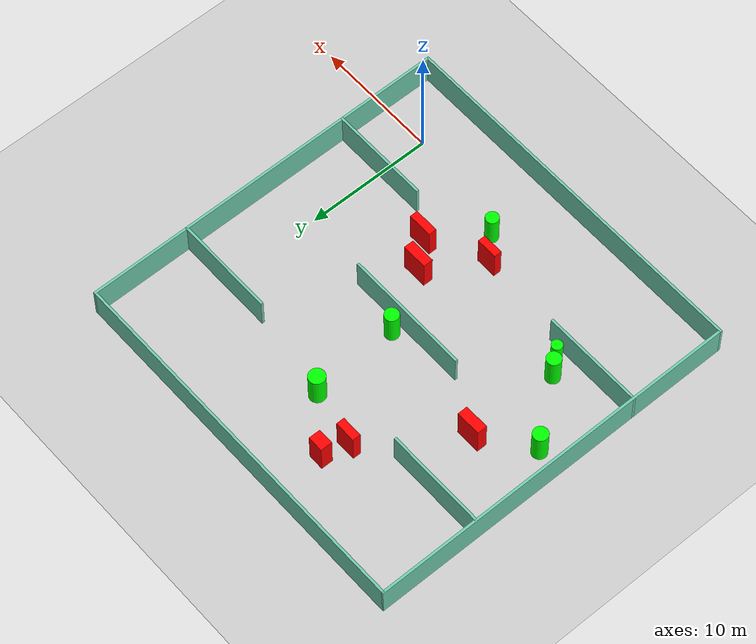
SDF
<sdf version="1.7">
 <world name="default">
  <light name="sun" type="directional">
   <pose>0 0 10 0 -0 0</pose>
   <diffuse>0.8 0.8 0.8 1</diffuse>
   <specular>0.2 0.2 0.2 1</specular>
   <attenuation>
    <range>1000</range>
    <constant>0.9</constant>
    <linear>0.01</linear>
    <quadratic>0.001</quadratic>
   </attenuation>
   <direction>-0.5 0.1 -0.9</direction>
   <spot><inner_angle>0</inner_angle><outer_angle>0</outer_angle><falloff>0</falloff></spot>
  </light>
  <model name="ground_plane">
   <static>1</static>
   <link name="link">
    <collision name="collision">
     <geometry><plane><normal>0 0 1</normal><size>100 100</size></plane></geometry>
     <surface>
      <contact><collide_bitmask>65535</collide_bitmask></contact>
      <friction><ode><mu>100</mu><mu2>50</mu2></ode></friction>
     </surface>
    </collision>
    <visual name="visual">
     <cast_shadows>0</cast_shadows>
     <geometry><plane><normal>0 0 1</normal><size>100 100</size></plane></geometry>
     <material>
      <script><uri>file://media/materials/scripts/gazebo.material</uri><name>Gazebo/Grey</name></script>
     </material>
    </visual>
   </link>
  </model>
  <gravity>0 0 -9.8</gravity>
  <magnetic_field>6e-06 2.3e-05 -4.2e-05</magnetic_field>
  <atmosphere type="adiabatic"/>
  <physics type="ode">
   <max_step_size>0.001</max_step_size>
   <real_time_factor>1</real_time_factor>
   <real_time_update_rate>1000</real_time_update_rate>
  </physics>
  <scene><ambient>0.4 0.4 0.4 1</ambient><background>0.7 0.7 0.7 1</background><shadows>1</shadows></scene>
  <spherical_coordinates>
   <surface_model>EARTH_WGS84</surface_model>
   <latitude_deg>0</latitude_deg>
   <longitude_deg>0</longitude_deg>
   <elevation>0</elevation>
   <heading_deg>0</heading_deg>
  </spherical_coordinates>
  <model name="my_base_walls">
   <link name="Wall_10">
    <collision name="Wall_10_Collision">
     <geometry><box><size>8.2 0.2 2.5</size></box></geometry>
     <pose>0 0 1.25 0 -0 0</pose>
    </collision>
    <visual name="Wall_10_Visual">
     <pose>0 0 1.25 0 -0 0</pose>
     <geometry><box><size>8.2 0.2 2.5</size></box></geometry>
     <material>
      <script><uri>file://media/materials/scripts/gazebo.material</uri><name>Gazebo/Grey</name></script>
      <ambient>0.435294 0.796078 0.67451 1</ambient>
     </material>
     <meta><layer>0</layer></meta>
    </visual>
    <pose>-11 -7 0 0 -0 0</pose>
   </link>
   <link name="Wall_12">
    <collision name="Wall_12_Collision">
     <geometry><box><size>8.2 0.2 2.5</size></box></geometry>
     <pose>0 0 1.25 0 -0 0</pose>
    </collision>
    <visual name="Wall_12_Visual">
     <pose>0 0 1.25 0 -0 0</pose>
     <geometry><box><size>8.2 0.2 2.5</size></box></geometry>
     <material>
      <script><uri>file://media/materials/scripts/gazebo.material</uri><name>Gazebo/Grey</name></script>
      <ambient>0.435294 0.796078 0.67451 1</ambient>
     </material>
     <meta><layer>0</layer></meta>
    </visual>
    <pose>-11 7 0 0 -0 0</pose>
   </link>
   <link name="Wall_14">
    <collision name="Wall_14_Collision">
     <geometry><box><size>8.2 0.2 2.5</size></box></geometry>
     <pose>0 0 1.25 0 -0 0</pose>
    </collision>
    <visual name="Wall_14_Visual">
     <pose>0 0 1.25 0 -0 0</pose>
     <geometry><box><size>8.2 0.2 2.5</size></box></geometry>
     <material>
      <script><uri>file://media/materials/scripts/gazebo.material</uri><name>Gazebo/Grey</name></script>
      <ambient>0.435294 0.796078 0.67451 1</ambient>
     </material>
     <meta><layer>0</layer></meta>
    </visual>
    <pose>11 7 0 0 -0 3.14159</pose>
   </link>
   <link name="Wall_16">
    <collision name="Wall_16_Collision">
     <geometry><box><size>10.2 0.2 2.5</size></box></geometry>
     <pose>0 0 1.25 0 -0 0</pose>
    </collision>
    <visual name="Wall_16_Visual">
     <pose>0 0 1.25 0 -0 0</pose>
     <geometry><box><size>10.2 0.2 2.5</size></box></geometry>
     <material>
      <script><uri>file://media/materials/scripts/gazebo.material</uri><name>Gazebo/Grey</name></script>
      <ambient>0.435294 0.796078 0.67451 1</ambient>
     </material>
     <meta><layer>0</layer></meta>
    </visual>
    <pose>0 0 0 0 -0 3.14159</pose>
   </link>
   <link name="Wall_2">
    <collision name="Wall_2_Collision">
     <geometry><box><size>30.2 0.2 2.5</size></box></geometry>
     <pose>0 0 1.25 0 -0 0</pose>
    </collision>
    <visual name="Wall_2_Visual">
     <pose>0 0 1.25 0 -0 0</pose>
     <geometry><box><size>30.2 0.2 2.5</size></box></geometry>
     <material>
      <script><uri>file://media/materials/scripts/gazebo.material</uri><name>Gazebo/Grey</name></script>
      <ambient>0.435294 0.796078 0.67451 1</ambient>
     </material>
     <meta><layer>0</layer></meta>
    </visual>
    <pose>0 -15 0 0 -0 3.14159</pose>
   </link>
   <link name="Wall_3">
    <collision name="Wall_3_Collision">
     <geometry><box><size>30.2 0.2 2.5</size></box></geometry>
     <pose>0 0 1.25 0 -0 0</pose>
    </collision>
    <visual name="Wall_3_Visual">
     <pose>0 0 1.25 0 -0 0</pose>
     <geometry><box><size>30.2 0.2 2.5</size></box></geometry>
     <material>
      <script><uri>file://media/materials/scripts/gazebo.material</uri><name>Gazebo/Grey</name></script>
      <ambient>0.435294 0.796078 0.67451 1</ambient>
     </material>
     <meta><layer>0</layer></meta>
    </visual>
    <pose>-15 0 0 0 -0 1.5708</pose>
   </link>
   <link name="Wall_4">
    <collision name="Wall_4_Collision">
     <geometry><box><size>30.2 0.2 2.5</size></box></geometry>
     <pose>0 0 1.25 0 -0 0</pose>
    </collision>
    <visual name="Wall_4_Visual">
     <pose>0 0 1.25 0 -0 0</pose>
     <geometry><box><size>30.2 0.2 2.5</size></box></geometry>
     <material>
      <script><uri>file://media/materials/scripts/gazebo.material</uri><name>Gazebo/Grey</name></script>
      <ambient>0.435294 0.796078 0.67451 1</ambient>
     </material>
     <meta><layer>0</layer></meta>
    </visual>
    <pose>0 15 0 0 -0 0</pose>
   </link>
   <link name="Wall_6">
    <collision name="Wall_6_Collision">
     <geometry><box><size>30.2 0.2 2.5</size></box></geometry>
     <pose>0 0 1.25 0 -0 0</pose>
    </collision>
    <visual name="Wall_6_Visual">
     <pose>0 0 1.25 0 -0 0</pose>
     <geometry><box><size>30.2 0.2 2.5</size></box></geometry>
     <material>
      <script><uri>file://media/materials/scripts/gazebo.material</uri><name>Gazebo/Grey</name></script>
      <ambient>0.435294 0.796078 0.67451 1</ambient>
     </material>
     <meta><layer>0</layer></meta>
    </visual>
    <pose>15 0 0 0 -0 1.5708</pose>
   </link>
   <link name="Wall_8">
    <collision name="Wall_8_Collision">
     <geometry><box><size>8.2 0.2 2.5</size></box></geometry>
     <pose>0 0 1.25 0 -0 0</pose>
    </collision>
    <visual name="Wall_8_Visual">
     <pose>0 0 1.25 0 -0 0</pose>
     <geometry><box><size>8.2 0.2 2.5</size></box></geometry>
     <material>
      <script><uri>file://media/materials/scripts/gazebo.material</uri><name>Gazebo/Grey</name></script>
      <ambient>0.435294 0.796078 0.67451 1</ambient>
     </material>
     <meta><layer>0</layer></meta>
    </visual>
    <pose>11 -7 0 0 -0 3.14159</pose>
   </link>
   <static>1</static>
   <pose>-11 11 0 0 -0 0</pose>
  </model>
  <model name="cylinder1">
   <static>1</static>
   <link name="link">
    <inertial>
     <mass>1</mass>
     <inertia><ixx>0.5</ixx><ixy>0</ixy><ixz>0</ixz><iyy>0.5</iyy><iyz>0</iyz><izz>1</izz></inertia>
    </inertial>
    <collision name="collision">
     <geometry><cylinder><radius>0.5634439496334398</radius><length>2.5</length></cylinder></geometry>
    </collision>
    <visual name="visual">
     <geometry><cylinder><radius>0.5634439496334398</radius><length>2.5</length></cylinder></geometry>
     <material>
      <ambient>0 1 0 1</ambient>
      <diffuse>0 1 0 1</diffuse>
      <specular>0.1 0.1 0.1 1</specular>
      <emissive>0 0 0 0</emissive>
     </material>
    </visual>
   </link>
   <pose>-20.25739639050571 5.945562726103331 1.25 0 0 0</pose>
  </model>
  <model name="cylinder2">
   <static>1</static>
   <link name="link">
    <inertial>
     <mass>1</mass>
     <inertia><ixx>0.5</ixx><ixy>0</ixy><ixz>0</ixz><iyy>0.5</iyy><iyz>0</iyz><izz>1</izz></inertia>
    </inertial>
    <collision name="collision">
     <geometry><cylinder><radius>0.42466297692322674</radius><length>2.5</length></cylinder></geometry>
    </collision>
    <visual name="visual">
     <geometry><cylinder><radius>0.42466297692322674</radius><length>2.5</length></cylinder></geometry>
     <material>
      <ambient>0 1 0 1</ambient>
      <diffuse>0 1 0 1</diffuse>
      <specular>0.1 0.1 0.1 1</specular>
      <emissive>0 0 0 0</emissive>
     </material>
    </visual>
   </link>
   <pose>-19.60630515697524 5.069853029142063 1.25 0 0 0</pose>
  </model>
  <model name="cylinder3">
   <static>1</static>
   <link name="link">
    <inertial>
     <mass>1</mass>
     <inertia><ixx>0.5</ixx><ixy>0</ixy><ixz>0</ixz><iyy>0.5</iyy><iyz>0</iyz><izz>1</izz></inertia>
    </inertial>
    <collision name="collision">
     <geometry><cylinder><radius>0.5562743929889551</radius><length>2.5</length></cylinder></geometry>
    </collision>
    <visual name="visual">
     <geometry><cylinder><radius>0.5562743929889551</radius><length>2.5</length></cylinder></geometry>
     <material>
      <ambient>0 1 0 1</ambient>
      <diffuse>0 1 0 1</diffuse>
      <specular>0.1 0.1 0.1 1</specular>
      <emissive>0 0 0 0</emissive>
     </material>
    </visual>
   </link>
   <pose>-10.513439363853989 11.91865825959956 1.25 0 0 0</pose>
  </model>
  <model name="cylinder4">
   <static>1</static>
   <link name="link">
    <inertial>
     <mass>1</mass>
     <inertia><ixx>0.5</ixx><ixy>0</ixy><ixz>0</ixz><iyy>0.5</iyy><iyz>0</iyz><izz>1</izz></inertia>
    </inertial>
    <collision name="collision">
     <geometry><cylinder><radius>0.5135716316737514</radius><length>2.5</length></cylinder></geometry>
    </collision>
    <visual name="visual">
     <geometry><cylinder><radius>0.5135716316737514</radius><length>2.5</length></cylinder></geometry>
     <material>
      <ambient>0 1 0 1</ambient>
      <diffuse>0 1 0 1</diffuse>
      <specular>0.1 0.1 0.1 1</specular>
      <emissive>0 0 0 0</emissive>
     </material>
    </visual>
   </link>
   <pose>-9.10949210361341 1.5618814103570307 1.25 0 0 0</pose>
  </model>
  <model name="cylinder5">
   <static>1</static>
   <link name="link">
    <inertial>
     <mass>1</mass>
     <inertia><ixx>0.5</ixx><ixy>0</ixy><ixz>0</ixz><iyy>0.5</iyy><iyz>0</iyz><izz>1</izz></inertia>
    </inertial>
    <collision name="collision">
     <geometry><cylinder><radius>0.5869959259390809</radius><length>2.5</length></cylinder></geometry>
    </collision>
    <visual name="visual">
     <geometry><cylinder><radius>0.5869959259390809</radius><length>2.5</length></cylinder></geometry>
     <material>
      <ambient>0 1 0 1</ambient>
      <diffuse>0 1 0 1</diffuse>
      <specular>0.1 0.1 0.1 1</specular>
      <emissive>0 0 0 0</emissive>
     </material>
    </visual>
   </link>
   <pose>-23.9657609192476 10.51204771616075 1.25 0 0 0</pose>
  </model>
  <model name="cylinder6">
   <static>1</static>
   <link name="link">
    <inertial>
     <mass>1</mass>
     <inertia><ixx>0.5</ixx><ixy>0</ixy><ixz>0</ixz><iyy>0.5</iyy><iyz>0</iyz><izz>1</izz></inertia>
    </inertial>
    <collision name="collision">
     <geometry><cylinder><radius>0.6440508610432913</radius><length>2.5</length></cylinder></geometry>
    </collision>
    <visual name="visual">
     <geometry><cylinder><radius>0.6440508610432913</radius><length>2.5</length></cylinder></geometry>
     <material>
      <ambient>0 1 0 1</ambient>
      <diffuse>0 1 0 1</diffuse>
      <specular>0.1 0.1 0.1 1</specular>
      <emissive>0 0 0 0</emissive>
     </material>
    </visual>
   </link>
   <pose>-10.891483285052223 18.861867770474245 1.25 0 0 0</pose>
  </model>
  <model name="box1">
   <static>1</static>
   <link name="link">
    <inertial>
     <mass>1</mass>
     <inertia><ixx>0.083</ixx><ixy>0</ixy><ixz>0</ixz><iyy>0.083</iyy><iyz>0</iyz><izz>0.083</izz></inertia>
    </inertial>
    <collision name="collision">
     <geometry><box><size>1.7052561931788388 0.6024578465838707 2.5</size></box></geometry>
    </collision>
    <visual name="visual">
     <geometry><box><size>1.7052561931788388 0.6024578465838707 2.5</size></box></geometry>
     <material>
      <ambient>1 0 0 1</ambient>
      <diffuse>1 0 0 1</diffuse>
      <specular>0.1 0.1 0.1 1</specular>
      <emissive>0 0 0 0</emissive>
     </material>
    </visual>
    <sensor name="my_contact" type="contact">
     <contact><collision>box_collision</collision><topic>__default_topic__</topic></contact>
    </sensor>
   </link>
   <pose>-10.756050316461371 3.255120886849175 1.25 0 0 0</pose>
  </model>
  <model name="box2">
   <static>1</static>
   <link name="link">
    <inertial>
     <mass>1</mass>
     <inertia><ixx>0.083</ixx><ixy>0</ixy><ixz>0</ixz><iyy>0.083</iyy><iyz>0</iyz><izz>0.083</izz></inertia>
    </inertial>
    <collision name="collision">
     <geometry><box><size>2.0501112067396323 0.7810069510645119 2.5</size></box></geometry>
    </collision>
    <visual name="visual">
     <geometry><box><size>2.0501112067396323 0.7810069510645119 2.5</size></box></geometry>
     <material>
      <ambient>1 0 0 1</ambient>
      <diffuse>1 0 0 1</diffuse>
      <specular>0.1 0.1 0.1 1</specular>
      <emissive>0 0 0 0</emissive>
     </material>
    </visual>
    <sensor name="my_contact" type="contact">
     <contact><collision>box_collision</collision><topic>__default_topic__</topic></contact>
    </sensor>
   </link>
   <pose>-8.002095378842931 7.346925363455602 1.25 0 0 0</pose>
  </model>
  <model name="box3">
   <static>1</static>
   <link name="link">
    <inertial>
     <mass>1</mass>
     <inertia><ixx>0.083</ixx><ixy>0</ixy><ixz>0</ixz><iyy>0.083</iyy><iyz>0</iyz><izz>0.083</izz></inertia>
    </inertial>
    <collision name="collision">
     <geometry><box><size>1.681067050362512 0.6602968599897922 2.5</size></box></geometry>
    </collision>
    <visual name="visual">
     <geometry><box><size>1.681067050362512 0.6602968599897922 2.5</size></box></geometry>
     <material>
      <ambient>1 0 0 1</ambient>
      <diffuse>1 0 0 1</diffuse>
      <specular>0.1 0.1 0.1 1</specular>
      <emissive>0 0 0 0</emissive>
     </material>
    </visual>
    <sensor name="my_contact" type="contact">
     <contact><collision>box_collision</collision><topic>__default_topic__</topic></contact>
    </sensor>
   </link>
   <pose>-15.374101352441965 19.903654097423722 1.25 0 0 0</pose>
  </model>
  <model name="box4">
   <static>1</static>
   <link name="link">
    <inertial>
     <mass>1</mass>
     <inertia><ixx>0.083</ixx><ixy>0</ixy><ixz>0</ixz><iyy>0.083</iyy><iyz>0</iyz><izz>0.083</izz></inertia>
    </inertial>
    <collision name="collision">
     <geometry><box><size>1.9914723681117668 0.7899737979137367 2.5</size></box></geometry>
    </collision>
    <visual name="visual">
     <geometry><box><size>1.9914723681117668 0.7899737979137367 2.5</size></box></geometry>
     <material>
      <ambient>1 0 0 1</ambient>
      <diffuse>1 0 0 1</diffuse>
      <specular>0.1 0.1 0.1 1</specular>
      <emissive>0 0 0 0</emissive>
     </material>
    </visual>
    <sensor name="my_contact" type="contact">
     <contact><collision>box_collision</collision><topic>__default_topic__</topic></contact>
    </sensor>
   </link>
   <pose>-20.229395159848877 13.23367187932147 1.25 0 0 0</pose>
  </model>
  <model name="box5">
   <static>1</static>
   <link name="link">
    <inertial>
     <mass>1</mass>
     <inertia><ixx>0.083</ixx><ixy>0</ixy><ixz>0</ixz><iyy>0.083</iyy><iyz>0</iyz><izz>0.083</izz></inertia>
    </inertial>
    <collision name="collision">
     <geometry><box><size>1.2512073641134727 0.9313367478803961 2.5</size></box></geometry>
    </collision>
    <visual name="visual">
     <geometry><box><size>1.2512073641134727 0.9313367478803961 2.5</size></box></geometry>
     <material>
      <ambient>1 0 0 1</ambient>
      <diffuse>1 0 0 1</diffuse>
      <specular>0.1 0.1 0.1 1</specular>
      <emissive>0 0 0 0</emissive>
     </material>
    </visual>
    <sensor name="my_contact" type="contact">
     <contact><collision>box_collision</collision><topic>__default_topic__</topic></contact>
    </sensor>
   </link>
   <pose>-14.804389984658801 21.844944514924027 1.25 0 0 0</pose>
  </model>
  <model name="box6">
   <static>1</static>
   <link name="link">
    <inertial>
     <mass>1</mass>
     <inertia><ixx>0.083</ixx><ixy>0</ixy><ixz>0</ixz><iyy>0.083</iyy><iyz>0</iyz><izz>0.083</izz></inertia>
    </inertial>
    <collision name="collision">
     <geometry><box><size>2.0039481775703876 0.6398473278256706 2.5</size></box></geometry>
    </collision>
    <visual name="visual">
     <geometry><box><size>2.0039481775703876 0.6398473278256706 2.5</size></box></geometry>
     <material>
      <ambient>1 0 0 1</ambient>
      <diffuse>1 0 0 1</diffuse>
      <specular>0.1 0.1 0.1 1</specular>
      <emissive>0 0 0 0</emissive>
     </material>
    </visual>
    <sensor name="my_contact" type="contact">
     <contact><collision>box_collision</collision><topic>__default_topic__</topic></contact>
    </sensor>
   </link>
   <pose>-6.328564751317451 5.450742025120791 1.25 0 0 0</pose>
  </model>
 </world>
</sdf>
